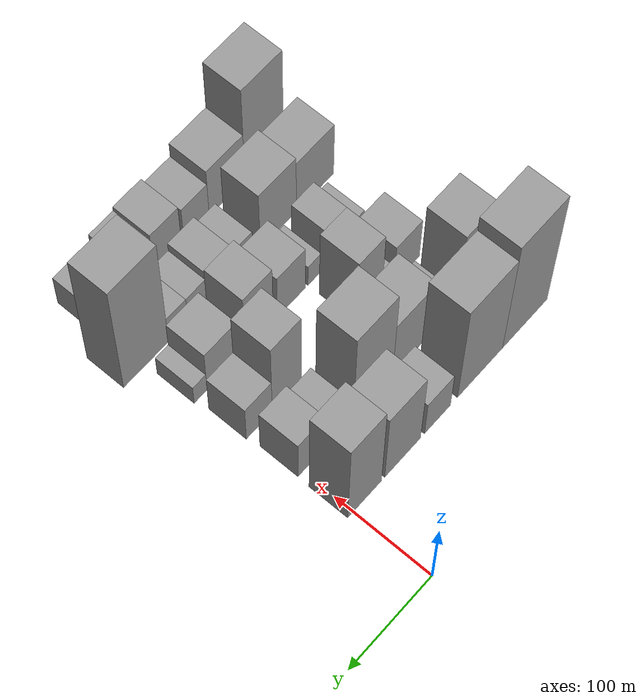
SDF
<sdf version="1.6">
 <world name="default">
  <model name="building_19">
   <static>1</static>
   <pose>100.0000 -215.3194 0 0.000000 0.000000 0.000000</pose>
   <link name="link">
    <pose>0 0 88.50 0 0 0</pose>
    <collision name="collision"><geometry><box><size>40.0000 57.9442 177.0000</size></box></geometry></collision>
    <visual name="visual">
     <cast_shadows>0</cast_shadows>
     <geometry><box><size>40.0000 57.9442 177.0000</size></box></geometry>
     <material>
      <script>
       <uri>model://grey_wall/materials/scripts</uri>
       <uri>model://grey_wall/materials/textures</uri>
       <name>vrc/grey_wall</name>
      </script>
     </material>
    </visual>
   </link>
  </model>
  <model name="building_20">
   <static>1</static>
   <pose>100.0000 -157.6240 0 0.000000 0.000000 0.000000</pose>
   <link name="link">
    <pose>0 0 78.00 0 0 0</pose>
    <collision name="collision"><geometry><box><size>40.0000 57.4465 156.0000</size></box></geometry></collision>
    <visual name="visual">
     <cast_shadows>0</cast_shadows>
     <geometry><box><size>40.0000 57.4465 156.0000</size></box></geometry>
     <material>
      <script>
       <uri>model://grey_wall/materials/scripts</uri>
       <uri>model://grey_wall/materials/textures</uri>
       <name>vrc/grey_wall</name>
      </script>
     </material>
    </visual>
   </link>
  </model>
  <model name="building_21">
   <static>1</static>
   <pose>100.0000 -103.6680 0 0.000000 0.000000 0.000000</pose>
   <link name="link">
    <pose>0 0 28.50 0 0 0</pose>
    <collision name="collision"><geometry><box><size>40.0000 32.4657 57.0000</size></box></geometry></collision>
    <visual name="visual">
     <cast_shadows>0</cast_shadows>
     <geometry><box><size>40.0000 32.4657 57.0000</size></box></geometry>
     <material>
      <script>
       <uri>model://grey_wall/materials/scripts</uri>
       <uri>model://grey_wall/materials/textures</uri>
       <name>vrc/grey_wall</name>
      </script>
     </material>
    </visual>
   </link>
  </model>
  <model name="building_22">
   <static>1</static>
   <pose>100.0000 -60.3665 0 0.000000 0.000000 0.000000</pose>
   <link name="link">
    <pose>0 0 57.00 0 0 0</pose>
    <collision name="collision"><geometry><box><size>40.0000 44.1373 114.0000</size></box></geometry></collision>
    <visual name="visual">
     <cast_shadows>0</cast_shadows>
     <geometry><box><size>40.0000 44.1373 114.0000</size></box></geometry>
     <material>
      <script>
       <uri>model://grey_wall/materials/scripts</uri>
       <uri>model://grey_wall/materials/textures</uri>
       <name>vrc/grey_wall</name>
      </script>
     </material>
    </visual>
   </link>
  </model>
  <model name="building_23">
   <static>1</static>
   <pose>100.0000 -13.8232 0 0.000000 0.000000 0.000000</pose>
   <link name="link">
    <pose>0 0 67.50 0 0 0</pose>
    <collision name="collision"><geometry><box><size>40.0000 40.9494 135.0000</size></box></geometry></collision>
    <visual name="visual">
     <cast_shadows>0</cast_shadows>
     <geometry><box><size>40.0000 40.9494 135.0000</size></box></geometry>
     <material>
      <script>
       <uri>model://grey_wall/materials/scripts</uri>
       <uri>model://grey_wall/materials/textures</uri>
       <name>vrc/grey_wall</name>
      </script>
     </material>
    </visual>
   </link>
  </model>
  <model name="building_73">
   <static>1</static>
   <pose>152.0000 -212.7350 0 0.000000 0.000000 0.000000</pose>
   <link name="link">
    <pose>0 0 60.00 0 0 0</pose>
    <collision name="collision"><geometry><box><size>40.0000 40.3830 120.0000</size></box></geometry></collision>
    <visual name="visual">
     <cast_shadows>0</cast_shadows>
     <geometry><box><size>40.0000 40.3830 120.0000</size></box></geometry>
     <material>
      <script>
       <uri>model://grey_wall/materials/scripts</uri>
       <uri>model://grey_wall/materials/textures</uri>
       <name>vrc/grey_wall</name>
      </script>
     </material>
    </visual>
   </link>
  </model>
  <model name="building_74">
   <static>1</static>
   <pose>152.0000 -171.8564 0 0.000000 0.000000 0.000000</pose>
   <link name="link">
    <pose>0 0 21.00 0 0 0</pose>
    <collision name="collision"><geometry><box><size>40.0000 23.3743 42.0000</size></box></geometry></collision>
    <visual name="visual">
     <cast_shadows>0</cast_shadows>
     <geometry><box><size>40.0000 23.3743 42.0000</size></box></geometry>
     <material>
      <script>
       <uri>model://grey_wall/materials/scripts</uri>
       <uri>model://grey_wall/materials/textures</uri>
       <name>vrc/grey_wall</name>
      </script>
     </material>
    </visual>
   </link>
  </model>
  <model name="building_75">
   <static>1</static>
   <pose>152.0000 -135.1604 0 0.000000 0.000000 0.000000</pose>
   <link name="link">
    <pose>0 0 45.00 0 0 0</pose>
    <collision name="collision"><geometry><box><size>40.0000 50.0176 90.0000</size></box></geometry></collision>
    <visual name="visual">
     <cast_shadows>0</cast_shadows>
     <geometry><box><size>40.0000 50.0176 90.0000</size></box></geometry>
     <material>
      <script>
       <uri>model://grey_wall/materials/scripts</uri>
       <uri>model://grey_wall/materials/textures</uri>
       <name>vrc/grey_wall</name>
      </script>
     </material>
    </visual>
   </link>
  </model>
  <model name="building_76">
   <static>1</static>
   <pose>152.0000 -85.8209 0 0.000000 0.000000 0.000000</pose>
   <link name="link">
    <pose>0 0 72.00 0 0 0</pose>
    <collision name="collision"><geometry><box><size>40.0000 48.6614 144.0000</size></box></geometry></collision>
    <visual name="visual">
     <cast_shadows>0</cast_shadows>
     <geometry><box><size>40.0000 48.6614 144.0000</size></box></geometry>
     <material>
      <script>
       <uri>model://grey_wall/materials/scripts</uri>
       <uri>model://grey_wall/materials/textures</uri>
       <name>vrc/grey_wall</name>
      </script>
     </material>
    </visual>
   </link>
  </model>
  <model name="building_77">
   <static>1</static>
   <pose>152.0000 -42.9681 0 0.000000 0.000000 0.000000</pose>
   <link name="link">
    <pose>0 0 24.00 0 0 0</pose>
    <collision name="collision"><geometry><box><size>40.0000 25.0443 48.0000</size></box></geometry></collision>
    <visual name="visual">
     <cast_shadows>0</cast_shadows>
     <geometry><box><size>40.0000 25.0443 48.0000</size></box></geometry>
     <material>
      <script>
       <uri>model://grey_wall/materials/scripts</uri>
       <uri>model://grey_wall/materials/textures</uri>
       <name>vrc/grey_wall</name>
      </script>
     </material>
    </visual>
   </link>
  </model>
  <model name="building_78">
   <static>1</static>
   <pose>152.0000 -10.2295 0 0.000000 0.000000 0.000000</pose>
   <link name="link">
    <pose>0 0 31.50 0 0 0</pose>
    <collision name="collision"><geometry><box><size>40.0000 32.4330 63.0000</size></box></geometry></collision>
    <visual name="visual">
     <cast_shadows>0</cast_shadows>
     <geometry><box><size>40.0000 32.4330 63.0000</size></box></geometry>
     <material>
      <script>
       <uri>model://grey_wall/materials/scripts</uri>
       <uri>model://grey_wall/materials/textures</uri>
       <name>vrc/grey_wall</name>
      </script>
     </material>
    </visual>
   </link>
  </model>
  <model name="building_124">
   <static>1</static>
   <pose>204.0000 -190.2039 0 0.000000 0.000000 0.000000</pose>
   <link name="link">
    <pose>0 0 31.50 0 0 0</pose>
    <collision name="collision"><geometry><box><size>40.0000 32.6035 63.0000</size></box></geometry></collision>
    <visual name="visual">
     <cast_shadows>0</cast_shadows>
     <geometry><box><size>40.0000 32.6035 63.0000</size></box></geometry>
     <material>
      <script>
       <uri>model://grey_wall/materials/scripts</uri>
       <uri>model://grey_wall/materials/textures</uri>
       <name>vrc/grey_wall</name>
      </script>
     </material>
    </visual>
   </link>
  </model>
  <model name="building_125">
   <static>1</static>
   <pose>204.0000 -166.1738 0 0.000000 0.000000 0.000000</pose>
   <link name="link">
    <pose>0 0 15.00 0 0 0</pose>
    <collision name="collision"><geometry><box><size>40.0000 15.4566 30.0000</size></box></geometry></collision>
    <visual name="visual">
     <cast_shadows>0</cast_shadows>
     <geometry><box><size>40.0000 15.4566 30.0000</size></box></geometry>
     <material>
      <script>
       <uri>model://grey_wall/materials/scripts</uri>
       <uri>model://grey_wall/materials/textures</uri>
       <name>vrc/grey_wall</name>
      </script>
     </material>
    </visual>
   </link>
  </model>
  <model name="building_126">
   <static>1</static>
   <pose>204.0000 -142.4936 0 0.000000 0.000000 0.000000</pose>
   <link name="link">
    <pose>0 0 52.50 0 0 0</pose>
    <collision name="collision"><geometry><box><size>40.0000 31.9039 105.0000</size></box></geometry></collision>
    <visual name="visual">
     <cast_shadows>0</cast_shadows>
     <geometry><box><size>40.0000 31.9039 105.0000</size></box></geometry>
     <material>
      <script>
       <uri>model://grey_wall/materials/scripts</uri>
       <uri>model://grey_wall/materials/textures</uri>
       <name>vrc/grey_wall</name>
      </script>
     </material>
    </visual>
   </link>
  </model>
  <model name="building_127">
   <static>1</static>
   <pose>204.0000 -40.2406 0 0.000000 0.000000 0.000000</pose>
   <link name="link">
    <pose>0 0 58.50 0 0 0</pose>
    <collision name="collision"><geometry><box><size>40.0000 35.5340 117.0000</size></box></geometry></collision>
    <visual name="visual">
     <cast_shadows>0</cast_shadows>
     <geometry><box><size>40.0000 35.5340 117.0000</size></box></geometry>
     <material>
      <script>
       <uri>model://grey_wall/materials/scripts</uri>
       <uri>model://grey_wall/materials/textures</uri>
       <name>vrc/grey_wall</name>
      </script>
     </material>
    </visual>
   </link>
  </model>
  <model name="building_128">
   <static>1</static>
   <pose>204.0000 -6.9004 0 0.000000 0.000000 0.000000</pose>
   <link name="link">
    <pose>0 0 28.50 0 0 0</pose>
    <collision name="collision"><geometry><box><size>40.0000 31.1466 57.0000</size></box></geometry></collision>
    <visual name="visual">
     <cast_shadows>0</cast_shadows>
     <geometry><box><size>40.0000 31.1466 57.0000</size></box></geometry>
     <material>
      <script>
       <uri>model://grey_wall/materials/scripts</uri>
       <uri>model://grey_wall/materials/textures</uri>
       <name>vrc/grey_wall</name>
      </script>
     </material>
    </visual>
   </link>
  </model>
  <model name="building_176">
   <static>1</static>
   <pose>256.0000 -188.4569 0 0.000000 0.000000 0.000000</pose>
   <link name="link">
    <pose>0 0 15.00 0 0 0</pose>
    <collision name="collision"><geometry><box><size>40.0000 17.2875 30.0000</size></box></geometry></collision>
    <visual name="visual">
     <cast_shadows>0</cast_shadows>
     <geometry><box><size>40.0000 17.2875 30.0000</size></box></geometry>
     <material>
      <script>
       <uri>model://grey_wall/materials/scripts</uri>
       <uri>model://grey_wall/materials/textures</uri>
       <name>vrc/grey_wall</name>
      </script>
     </material>
    </visual>
   </link>
  </model>
  <model name="building_177">
   <static>1</static>
   <pose>256.0000 -165.7973 0 0.000000 0.000000 0.000000</pose>
   <link name="link">
    <pose>0 0 27.00 0 0 0</pose>
    <collision name="collision"><geometry><box><size>40.0000 28.0317 54.0000</size></box></geometry></collision>
    <visual name="visual">
     <cast_shadows>0</cast_shadows>
     <geometry><box><size>40.0000 28.0317 54.0000</size></box></geometry>
     <material>
      <script>
       <uri>model://grey_wall/materials/scripts</uri>
       <uri>model://grey_wall/materials/textures</uri>
       <name>vrc/grey_wall</name>
      </script>
     </material>
    </visual>
   </link>
  </model>
  <model name="building_178">
   <static>1</static>
   <pose>256.0000 -134.5184 0 0.000000 0.000000 0.000000</pose>
   <link name="link">
    <pose>0 0 16.50 0 0 0</pose>
    <collision name="collision"><geometry><box><size>40.0000 16.5261 33.0000</size></box></geometry></collision>
    <visual name="visual">
     <cast_shadows>0</cast_shadows>
     <geometry><box><size>40.0000 16.5261 33.0000</size></box></geometry>
     <material>
      <script>
       <uri>model://grey_wall/materials/scripts</uri>
       <uri>model://grey_wall/materials/textures</uri>
       <name>vrc/grey_wall</name>
      </script>
     </material>
    </visual>
   </link>
  </model>
  <model name="building_179">
   <static>1</static>
   <pose>256.0000 -105.8083 0 0.000000 0.000000 0.000000</pose>
   <link name="link">
    <pose>0 0 34.50 0 0 0</pose>
    <collision name="collision"><geometry><box><size>40.0000 34.8940 69.0000</size></box></geometry></collision>
    <visual name="visual">
     <cast_shadows>0</cast_shadows>
     <geometry><box><size>40.0000 34.8940 69.0000</size></box></geometry>
     <material>
      <script>
       <uri>model://grey_wall/materials/scripts</uri>
       <uri>model://grey_wall/materials/textures</uri>
       <name>vrc/grey_wall</name>
      </script>
     </material>
    </visual>
   </link>
  </model>
  <model name="building_180">
   <static>1</static>
   <pose>256.0000 -65.9725 0 0.000000 0.000000 0.000000</pose>
   <link name="link">
    <pose>0 0 46.50 0 0 0</pose>
    <collision name="collision"><geometry><box><size>40.0000 34.7776 93.0000</size></box></geometry></collision>
    <visual name="visual">
     <cast_shadows>0</cast_shadows>
     <geometry><box><size>40.0000 34.7776 93.0000</size></box></geometry>
     <material>
      <script>
       <uri>model://grey_wall/materials/scripts</uri>
       <uri>model://grey_wall/materials/textures</uri>
       <name>vrc/grey_wall</name>
      </script>
     </material>
    </visual>
   </link>
  </model>
  <model name="building_181">
   <static>1</static>
   <pose>256.0000 -21.6365 0 0.000000 0.000000 0.000000</pose>
   <link name="link">
    <pose>0 0 33.00 0 0 0</pose>
    <collision name="collision"><geometry><box><size>40.0000 37.8945 66.0000</size></box></geometry></collision>
    <visual name="visual">
     <cast_shadows>0</cast_shadows>
     <geometry><box><size>40.0000 37.8945 66.0000</size></box></geometry>
     <material>
      <script>
       <uri>model://grey_wall/materials/scripts</uri>
       <uri>model://grey_wall/materials/textures</uri>
       <name>vrc/grey_wall</name>
      </script>
     </material>
    </visual>
   </link>
  </model>
  <model name="building_182">
   <static>1</static>
   <pose>256.0000 5.0600 0 0.000000 0.000000 0.000000</pose>
   <link name="link">
    <pose>0 0 15.00 0 0 0</pose>
    <collision name="collision"><geometry><box><size>40.0000 15.4984 30.0000</size></box></geometry></collision>
    <visual name="visual">
     <cast_shadows>0</cast_shadows>
     <geometry><box><size>40.0000 15.4984 30.0000</size></box></geometry>
     <material>
      <script>
       <uri>model://grey_wall/materials/scripts</uri>
       <uri>model://grey_wall/materials/textures</uri>
       <name>vrc/grey_wall</name>
      </script>
     </material>
    </visual>
   </link>
  </model>
  <model name="building_223">
   <static>1</static>
   <pose>308.0000 -195.4968 0 0.000000 0.000000 0.000000</pose>
   <link name="link">
    <pose>0 0 40.50 0 0 0</pose>
    <collision name="collision"><geometry><box><size>40.0000 47.5092 81.0000</size></box></geometry></collision>
    <visual name="visual">
     <cast_shadows>0</cast_shadows>
     <geometry><box><size>40.0000 47.5092 81.0000</size></box></geometry>
     <material>
      <script>
       <uri>model://grey_wall/materials/scripts</uri>
       <uri>model://grey_wall/materials/textures</uri>
       <name>vrc/grey_wall</name>
      </script>
     </material>
    </visual>
   </link>
  </model>
  <model name="building_224">
   <static>1</static>
   <pose>308.0000 -149.0042 0 0.000000 0.000000 0.000000</pose>
   <link name="link">
    <pose>0 0 45.00 0 0 0</pose>
    <collision name="collision"><geometry><box><size>40.0000 45.4760 90.0000</size></box></geometry></collision>
    <visual name="visual">
     <cast_shadows>0</cast_shadows>
     <geometry><box><size>40.0000 45.4760 90.0000</size></box></geometry>
     <material>
      <script>
       <uri>model://grey_wall/materials/scripts</uri>
       <uri>model://grey_wall/materials/textures</uri>
       <name>vrc/grey_wall</name>
      </script>
     </material>
    </visual>
   </link>
  </model>
  <model name="building_225">
   <static>1</static>
   <pose>308.0000 -104.7987 0 0.000000 0.000000 0.000000</pose>
   <link name="link">
    <pose>0 0 21.00 0 0 0</pose>
    <collision name="collision"><geometry><box><size>40.0000 24.9350 42.0000</size></box></geometry></collision>
    <visual name="visual">
     <cast_shadows>0</cast_shadows>
     <geometry><box><size>40.0000 24.9350 42.0000</size></box></geometry>
     <material>
      <script>
       <uri>model://grey_wall/materials/scripts</uri>
       <uri>model://grey_wall/materials/textures</uri>
       <name>vrc/grey_wall</name>
      </script>
     </material>
    </visual>
   </link>
  </model>
  <model name="building_226">
   <static>1</static>
   <pose>308.0000 -76.5376 0 0.000000 0.000000 0.000000</pose>
   <link name="link">
    <pose>0 0 27.00 0 0 0</pose>
    <collision name="collision"><geometry><box><size>40.0000 31.5873 54.0000</size></box></geometry></collision>
    <visual name="visual">
     <cast_shadows>0</cast_shadows>
     <geometry><box><size>40.0000 31.5873 54.0000</size></box></geometry>
     <material>
      <script>
       <uri>model://grey_wall/materials/scripts</uri>
       <uri>model://grey_wall/materials/textures</uri>
       <name>vrc/grey_wall</name>
      </script>
     </material>
    </visual>
   </link>
  </model>
  <model name="building_227">
   <static>1</static>
   <pose>308.0000 -49.0913 0 0.000000 0.000000 0.000000</pose>
   <link name="link">
    <pose>0 0 21.00 0 0 0</pose>
    <collision name="collision"><geometry><box><size>40.0000 23.3052 42.0000</size></box></geometry></collision>
    <visual name="visual">
     <cast_shadows>0</cast_shadows>
     <geometry><box><size>40.0000 23.3052 42.0000</size></box></geometry>
     <material>
      <script>
       <uri>model://grey_wall/materials/scripts</uri>
       <uri>model://grey_wall/materials/textures</uri>
       <name>vrc/grey_wall</name>
      </script>
     </material>
    </visual>
   </link>
  </model>
  <model name="building_228">
   <static>1</static>
   <pose>308.0000 -25.6803 0 0.000000 0.000000 0.000000</pose>
   <link name="link">
    <pose>0 0 21.00 0 0 0</pose>
    <collision name="collision"><geometry><box><size>40.0000 23.5169 42.0000</size></box></geometry></collision>
    <visual name="visual">
     <cast_shadows>0</cast_shadows>
     <geometry><box><size>40.0000 23.5169 42.0000</size></box></geometry>
     <material>
      <script>
       <uri>model://grey_wall/materials/scripts</uri>
       <uri>model://grey_wall/materials/textures</uri>
       <name>vrc/grey_wall</name>
      </script>
     </material>
    </visual>
   </link>
  </model>
  <model name="building_229">
   <static>1</static>
   <pose>308.0000 12.8914 0 0.000000 0.000000 0.000000</pose>
   <link name="link">
    <pose>0 0 85.50 0 0 0</pose>
    <collision name="collision"><geometry><box><size>40.0000 53.6263 171.0000</size></box></geometry></collision>
    <visual name="visual">
     <cast_shadows>0</cast_shadows>
     <geometry><box><size>40.0000 53.6263 171.0000</size></box></geometry>
     <material>
      <script>
       <uri>model://grey_wall/materials/scripts</uri>
       <uri>model://grey_wall/materials/textures</uri>
       <name>vrc/grey_wall</name>
      </script>
     </material>
    </visual>
   </link>
  </model>
  <model name="building_270">
   <static>1</static>
   <pose>360.0000 -190.5703 0 0.000000 0.000000 0.000000</pose>
   <link name="link">
    <pose>0 0 72.00 0 0 0</pose>
    <collision name="collision"><geometry><box><size>40.0000 49.2501 144.0000</size></box></geometry></collision>
    <visual name="visual">
     <cast_shadows>0</cast_shadows>
     <geometry><box><size>40.0000 49.2501 144.0000</size></box></geometry>
     <material>
      <script>
       <uri>model://grey_wall/materials/scripts</uri>
       <uri>model://grey_wall/materials/textures</uri>
       <name>vrc/grey_wall</name>
      </script>
     </material>
    </visual>
   </link>
  </model>
  <model name="building_271">
   <static>1</static>
   <pose>360.0000 -143.6173 0 0.000000 0.000000 0.000000</pose>
   <link name="link">
    <pose>0 0 37.50 0 0 0</pose>
    <collision name="collision"><geometry><box><size>40.0000 44.6559 75.0000</size></box></geometry></collision>
    <visual name="visual">
     <cast_shadows>0</cast_shadows>
     <geometry><box><size>40.0000 44.6559 75.0000</size></box></geometry>
     <material>
      <script>
       <uri>model://grey_wall/materials/scripts</uri>
       <uri>model://grey_wall/materials/textures</uri>
       <name>vrc/grey_wall</name>
      </script>
     </material>
    </visual>
   </link>
  </model>
  <model name="building_272">
   <static>1</static>
   <pose>360.0000 -105.6601 0 0.000000 0.000000 0.000000</pose>
   <link name="link">
    <pose>0 0 27.00 0 0 0</pose>
    <collision name="collision"><geometry><box><size>40.0000 31.2584 54.0000</size></box></geometry></collision>
    <visual name="visual">
     <cast_shadows>0</cast_shadows>
     <geometry><box><size>40.0000 31.2584 54.0000</size></box></geometry>
     <material>
      <script>
       <uri>model://grey_wall/materials/scripts</uri>
       <uri>model://grey_wall/materials/textures</uri>
       <name>vrc/grey_wall</name>
      </script>
     </material>
    </visual>
   </link>
  </model>
  <model name="building_273">
   <static>1</static>
   <pose>360.0000 -70.2090 0 0.000000 0.000000 0.000000</pose>
   <link name="link">
    <pose>0 0 31.50 0 0 0</pose>
    <collision name="collision"><geometry><box><size>40.0000 33.6439 63.0000</size></box></geometry></collision>
    <visual name="visual">
     <cast_shadows>0</cast_shadows>
     <geometry><box><size>40.0000 33.6439 63.0000</size></box></geometry>
     <material>
      <script>
       <uri>model://grey_wall/materials/scripts</uri>
       <uri>model://grey_wall/materials/textures</uri>
       <name>vrc/grey_wall</name>
      </script>
     </material>
    </visual>
   </link>
  </model>
  <model name="building_274">
   <static>1</static>
   <pose>360.0000 -38.8140 0 0.000000 0.000000 0.000000</pose>
   <link name="link">
    <pose>0 0 28.50 0 0 0</pose>
    <collision name="collision"><geometry><box><size>40.0000 29.1460 57.0000</size></box></geometry></collision>
    <visual name="visual">
     <cast_shadows>0</cast_shadows>
     <geometry><box><size>40.0000 29.1460 57.0000</size></box></geometry>
     <material>
      <script>
       <uri>model://grey_wall/materials/scripts</uri>
       <uri>model://grey_wall/materials/textures</uri>
       <name>vrc/grey_wall</name>
      </script>
     </material>
    </visual>
   </link>
  </model>
  <model name="building_275">
   <static>1</static>
   <pose>360.0000 -20.6896 0 0.000000 0.000000 0.000000</pose>
   <link name="link">
    <pose>0 0 7.50 0 0 0</pose>
    <collision name="collision"><geometry><box><size>40.0000 7.1028 15.0000</size></box></geometry></collision>
    <visual name="visual">
     <cast_shadows>0</cast_shadows>
     <geometry><box><size>40.0000 7.1028 15.0000</size></box></geometry>
     <material>
      <script>
       <uri>model://grey_wall/materials/scripts</uri>
       <uri>model://grey_wall/materials/textures</uri>
       <name>vrc/grey_wall</name>
      </script>
     </material>
    </visual>
   </link>
  </model>
  <model name="building_276">
   <static>1</static>
   <pose>360.0000 -11.1517 0 0.000000 0.000000 0.000000</pose>
   <link name="link">
    <pose>0 0 12.00 0 0 0</pose>
    <collision name="collision"><geometry><box><size>40.0000 11.9730 24.0000</size></box></geometry></collision>
    <visual name="visual">
     <cast_shadows>0</cast_shadows>
     <geometry><box><size>40.0000 11.9730 24.0000</size></box></geometry>
     <material>
      <script>
       <uri>model://grey_wall/materials/scripts</uri>
       <uri>model://grey_wall/materials/textures</uri>
       <name>vrc/grey_wall</name>
      </script>
     </material>
    </visual>
   </link>
  </model>
  <model name="building_277">
   <static>1</static>
   <pose>360.0000 7.0204 0 0.000000 0.000000 0.000000</pose>
   <link name="link">
    <pose>0 0 22.50 0 0 0</pose>
    <collision name="collision"><geometry><box><size>40.0000 24.3714 45.0000</size></box></geometry></collision>
    <visual name="visual">
     <cast_shadows>0</cast_shadows>
     <geometry><box><size>40.0000 24.3714 45.0000</size></box></geometry>
     <material>
      <script>
       <uri>model://grey_wall/materials/scripts</uri>
       <uri>model://grey_wall/materials/textures</uri>
       <name>vrc/grey_wall</name>
      </script>
     </material>
    </visual>
   </link>
  </model>
 </world>
</sdf>
